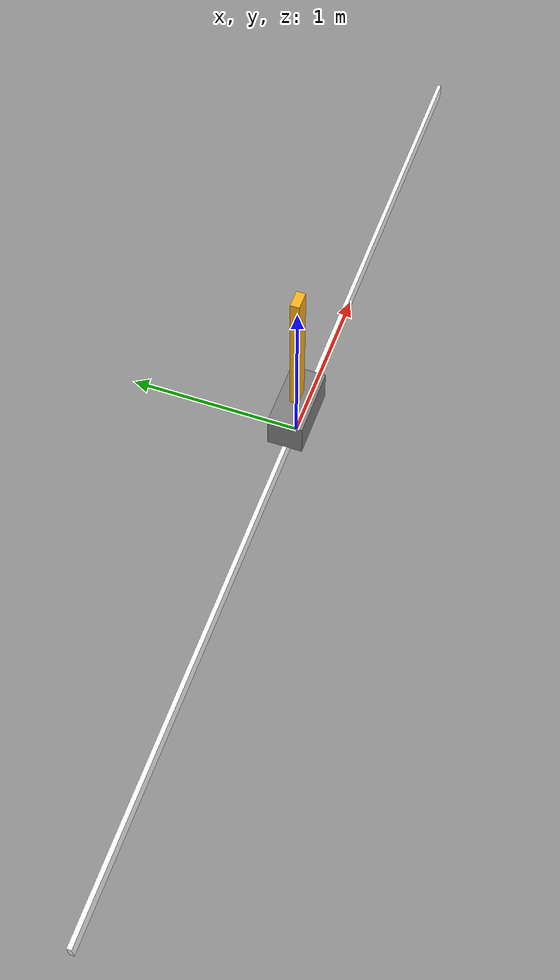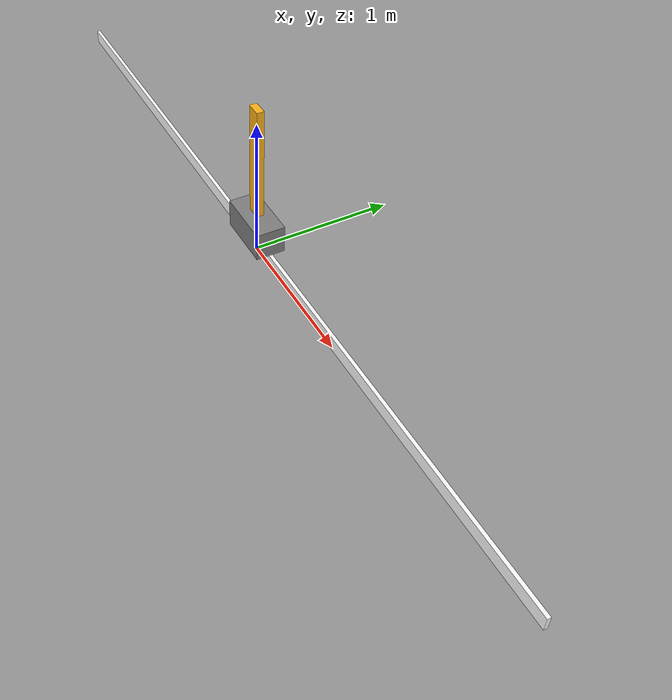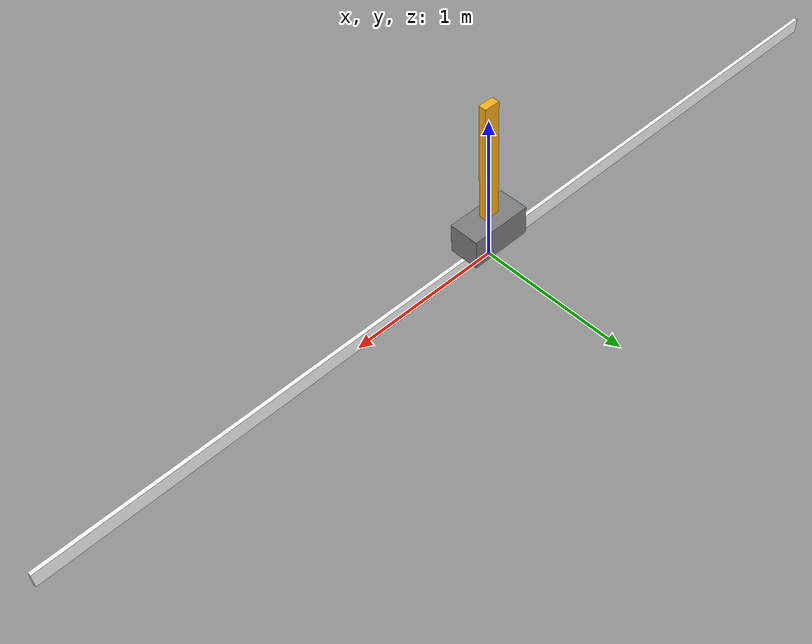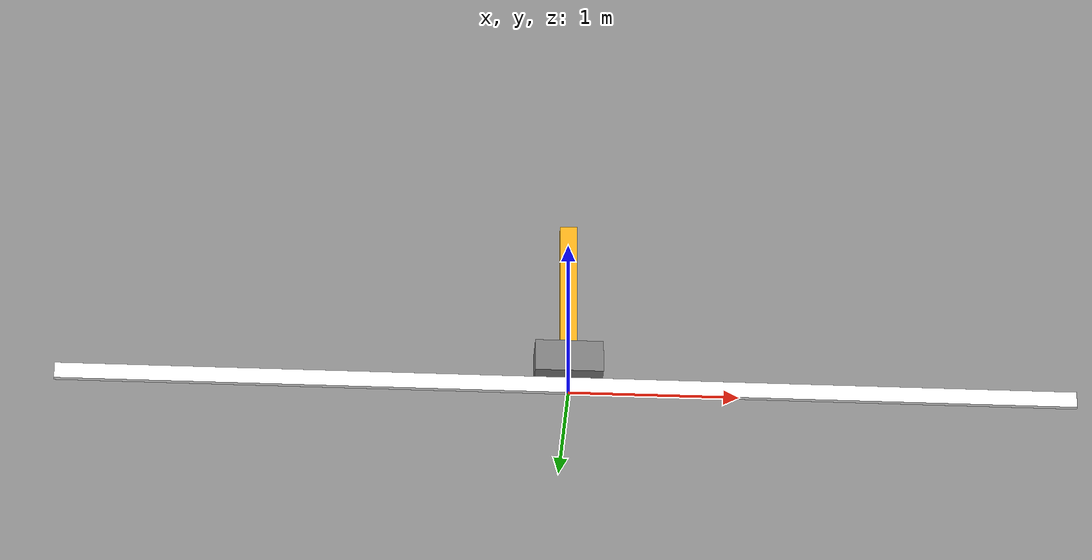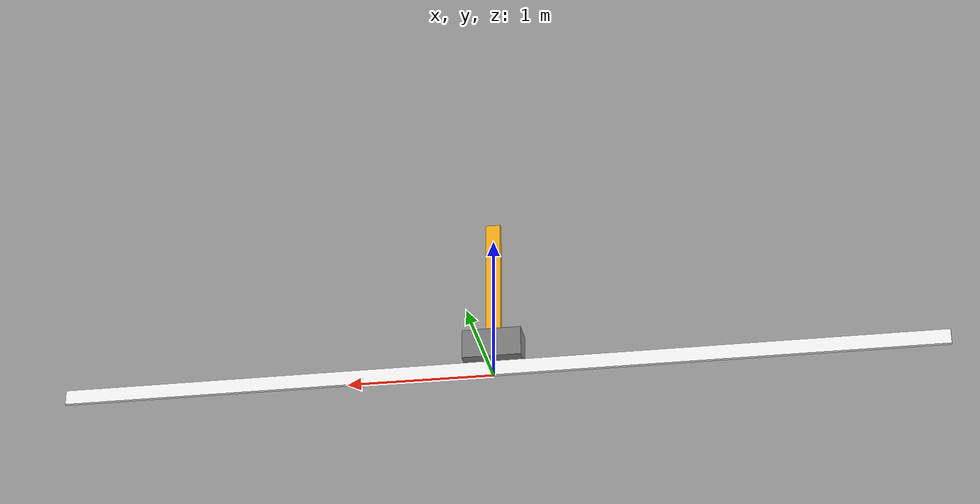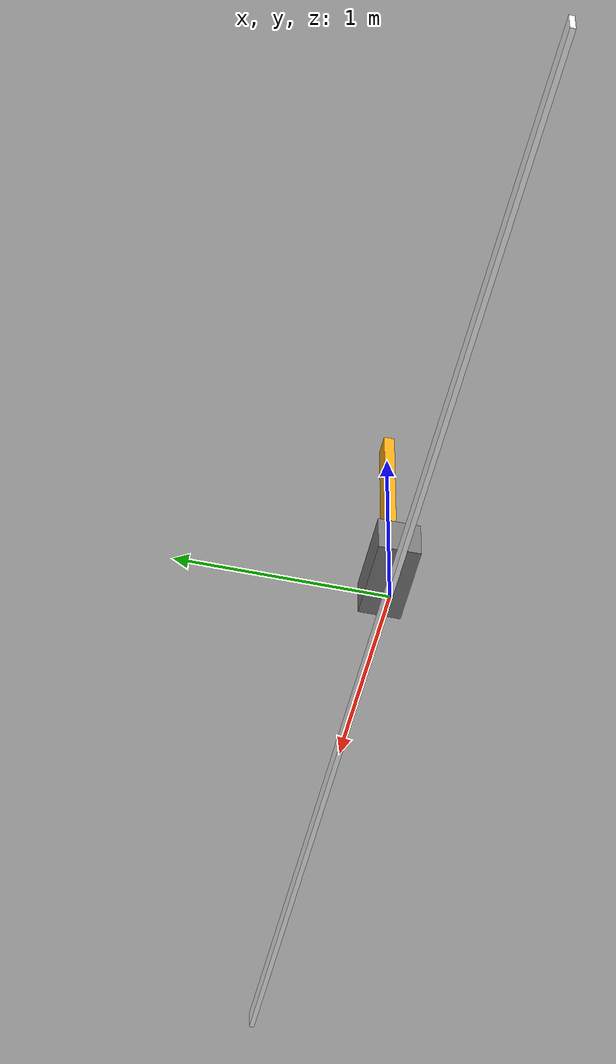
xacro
<?xml version="1.0" encoding="utf-8"  ?>
<robot name="cartpole_v0" xmlns:xacro="http://www.ros.org/wiki/xacro">

	<xacro:arg name="bar_width"   default="0.1" />
	<xacro:arg name="bar_length"  default="0.05" />
	<xacro:arg name="bar_height"  default="0.8" />
	<xacro:arg name="bar_mass"    default="1" />
	<xacro:arg name="base_width"  default="0.4" />
	<xacro:arg name="base_length" default="0.2" />
	<xacro:arg name="base_height" default="0.2" />
	<xacro:arg name="base_mass"   default="1" />
	<xacro:arg name="rail_width"  default="6" />
	<xacro:arg name="rail_length" default="0.025" />
	<xacro:arg name="rail_height" default="0.1" />
	<xacro:arg name="rail_mass"   default="100" />
	<xacro:arg name="hinge_friction" default="0.01" />
	<xacro:arg name="rail_friction"  default="0.01" />
	<xacro:arg name="hinge_damping"  default="0.1" />
	<xacro:arg name="rail_damping"   default="0.1" />

	<xacro:arg name="rail_x" default="0.0" />
	<xacro:arg name="rail_y" default="0.0" />
	<xacro:arg name="rail_z" default="0.0" />
	<xacro:arg name="rail_roll"  default="0.0" />
	<xacro:arg name="rail_pitch" default="0.0" />
	<xacro:arg name="rail_yaw"   default="0.0" />
	<xacro:arg name="use_collisions" default="true" />
	<xacro:arg name="bar_color"  default="1.0 0.7 0.1 1" /> <!-- Orange -->
	<xacro:arg name="base_color" default="0.5 0.5 0.5 1" /> <!-- grey -->
	<xacro:arg name="rail_color" default="1   1   1   1" /> <!-- White -->

	<xacro:property name="bar_width" default="$(arg bar_width)" />
	<xacro:property name="bar_length" default="$(arg bar_length)" />
	<xacro:property name="bar_height" default="$(arg bar_height)" />
	<xacro:property name="bar_mass" default="$(arg bar_mass)" />
	<xacro:property name="bar_color" default="$(arg bar_color)" />
	<xacro:property name="base_width" default="$(arg base_width)" />
	<xacro:property name="base_length" default="$(arg base_length)" />
	<xacro:property name="base_height" default="$(arg base_height)" />
	<xacro:property name="base_mass" default="$(arg base_mass)" />
	<xacro:property name="base_color" default="$(arg base_color)" />
	<xacro:property name="rail_color" default="$(arg rail_color)" />
	<xacro:property name="rail_width" default="$(arg rail_width)" />
	<xacro:property name="rail_length" default="$(arg rail_length)" />
	<xacro:property name="rail_height" default="$(arg rail_height)" />
	<xacro:property name="rail_mass" default="$(arg rail_mass)" />
	<xacro:property name="hinge_friction" default="$(arg hinge_friction)" />
	<xacro:property name="rail_friction" default="$(arg rail_friction)" />
	<xacro:property name="hinge_damping" default="$(arg hinge_damping)" />
	<xacro:property name="rail_damping" default="$(arg rail_damping)" />
	<xacro:property name="rail_x" default="$(arg rail_x)" />
	<xacro:property name="rail_y" default="$(arg rail_y)" />
	<xacro:property name="rail_z" default="$(arg rail_z)" />
	<xacro:property name="rail_roll" default="$(arg rail_roll)" />
	<xacro:property name="rail_pitch" default="$(arg rail_pitch)" />
	<xacro:property name="rail_yaw" default="$(arg rail_yaw)" />
	<xacro:property name="use_collisions" default="$(arg use_collisions)" />

	<xacro:macro name="box_inertial" params="mass x y z pose_xyz pose_rpy">
		<inertial>
			<origin xyz="${pose_xyz}" rpy="${pose_rpy}"/>
			<mass value="${mass}" />
			<inertia ixx="${0.083 * mass * (y*y + z*z)}" ixy="0.0" ixz="0.0" iyy="${0.083 * mass * (x*x + z*z)}" iyz="0.0" izz="${0.083 * mass * (x*x + y*y)}"/>
		</inertial>
	</xacro:macro>

	<!-- * * * Link Definitions * * * -->
  	<!-- * * * Define World Link to fix the foot rail to the world * * * -->
    <link name="world"/>
	<link name="bar_link">
		<visual name = "bar_link_v">
			<origin xyz="0 0 ${bar_height/2}" rpy="0 0 0"/>
			<geometry>
				<box size="${bar_width} ${bar_length} ${bar_height}"/>
			</geometry>
            <material name="bar_material">
                <color rgba="$(arg bar_color)"/>
            </material>
		</visual>
		<xacro:if value="${use_collisions}">
			<collision name = "bar_link_c">
				<origin xyz="0 0 ${bar_height/2}" rpy="0 0 0"/>
				<geometry>
					<box size="${bar_width} ${bar_length} ${bar_height}"/>
				</geometry>
			</collision>
		</xacro:if>
		<xacro:box_inertial mass="${bar_mass}" x="${bar_width}" y="${bar_length}" z="${bar_height}" pose_xyz="0 0 ${bar_height/2}" pose_rpy="0 0 0"/>
	</link>
	<gazebo reference="bar_link">
		<visual name="bar_link_v">
			<material>
			<ambient>$(arg bar_color)</ambient>
			<diffuse>$(arg bar_color)</diffuse>
			</material>
      	</visual>
    </gazebo>

	<link name="base_link">
		<visual>
			<origin xyz="0 0 ${base_height}" rpy="0 0 0"/>
			<geometry>
				<box size="${base_width} ${base_length} ${base_height}"/>
			</geometry>
            <material name="base_material">
                <color rgba="$(arg base_color)"/>
            </material>
	   	</visual>
		<xacro:if value="${use_collisions}">
			<collision>
				<origin xyz="0 0 ${base_height}" rpy="0 0 0"/>
				<geometry>
					<box size="${base_width} ${base_length} ${base_height}"/>
				</geometry>
			</collision>
		</xacro:if>
		<xacro:box_inertial mass="${base_mass}" x="${base_width}" y="${base_length}" z="${base_height}" pose_xyz="0 0 ${base_height}" pose_rpy="0 0 0"/>
	</link>
	<gazebo reference="base_link">
		<visual name="visual">
			<material>
			<ambient>$(arg base_color)</ambient>
			<diffuse>$(arg base_color)</diffuse>
			</material>
      	</visual>
    </gazebo>

	<link name="foot_link">
		<origin xyz="${rail_x} ${rail_y} ${rail_z}" rpy="${rail_roll} ${rail_pitch} ${rail_yaw}"/>
		<visual name = "foot_link_v">
			<origin xyz="0 0 ${rail_height/2}" rpy="0 0 0"/>
			<geometry>
				<box size="${rail_width} ${rail_length} ${rail_height}"/>
			</geometry>
            <material name="rail_material">
                <color rgba="$(arg rail_color)"/>
            </material>
	   </visual>
		<xacro:if value="${use_collisions}">
			<collision name = "foot_link_c">
				<origin xyz="0 0 ${rail_height/2}" rpy="0 0 0"/>
				<geometry>
					<box size="${rail_width} ${rail_length} ${rail_height}"/>
				</geometry>
			</collision>
		</xacro:if>
		<xacro:box_inertial mass="${rail_mass}" x="${rail_width}" y="${rail_length}" z="${rail_height}" pose_xyz="0 0 ${rail_height/2}" pose_rpy="0 0 0"/>
	</link>
	<gazebo reference="foot_link">
		<visual name="visual">
			<material>
			<ambient>$(arg rail_color)</ambient>
			<diffuse>$(arg rail_color)</diffuse>
			</material>
      	</visual>
    </gazebo>

 	<joint name="cartpole_joint" type="continuous">
    	<parent link="base_link"/>
    	<child link="bar_link"/>
    	<origin xyz="0 0 0.32" rpy="0 0 0"/>
		<dynamics damping="${hinge_damping}" friction="${hinge_friction}"/>
       	<limit effort="100" velocity="100"/>
        <axis xyz="0 1 0"/>
	</joint>
	<joint name="foot_joint" type="prismatic">
    	<parent link="foot_link"/>
    	<child link="base_link"/>
		<dynamics damping="${rail_damping}" friction="${rail_friction}"/>
       	<limit lower="-2.0" upper="2.0" effort="100" velocity="100"/>
        <axis xyz="1 0 0"/>
	</joint>
	<joint name="fixed" type="fixed">
        <parent link="world"/>
        <child link="foot_link"/>
    </joint>

</robot>
